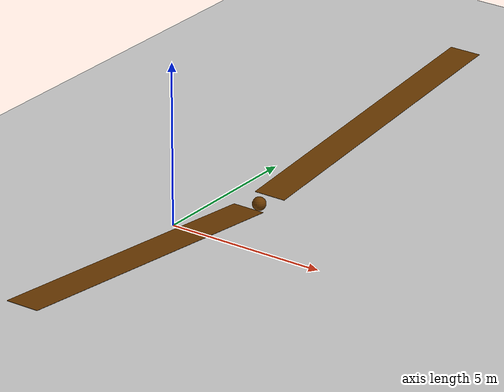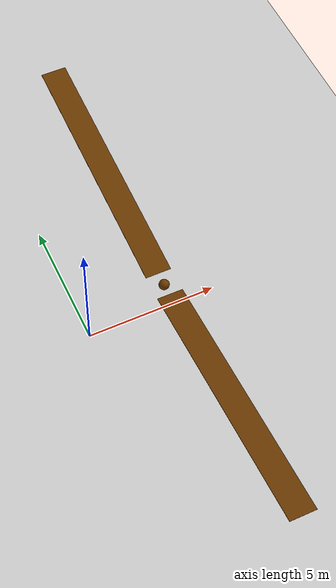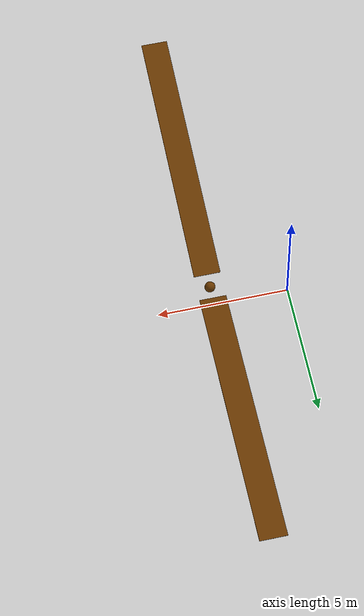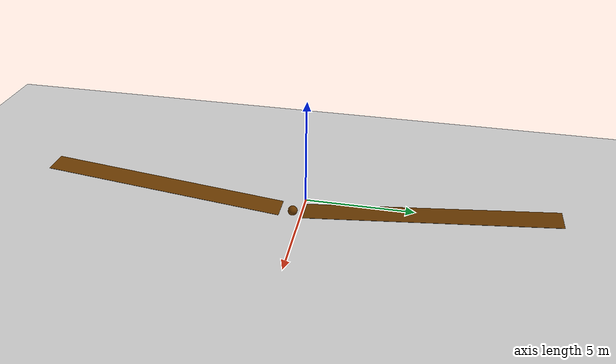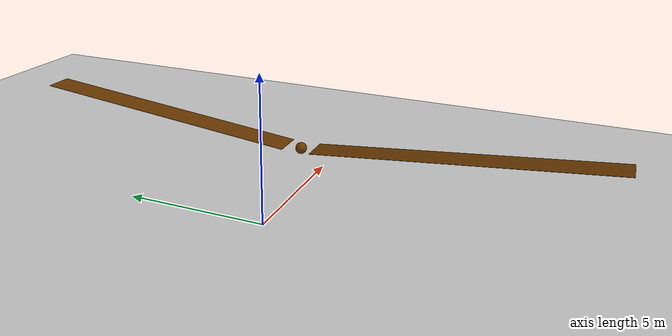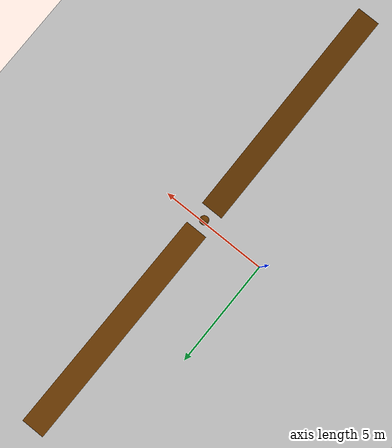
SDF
<?xml version="1.0" ?>
<sdf version="1.4">
  <world name="default">
    <physics type="ode">
      <gravity>0.0 0.0 0.0</gravity>
      <ode>
        <solver>
          <type>quick</type>
          <iters>1500</iters>
          <sor>1.0</sor>
        </solver>
        <constraints>
          <cfm>0.0</cfm>
          <erp>0.2</erp>
          <contact_max_correcting_vel>0.1</contact_max_correcting_vel>
          <contact_surface_layer>0.0</contact_surface_layer>
        </constraints>
      </ode>
      <real_time_update_rate>0</real_time_update_rate>
      <max_step_size>0.001</max_step_size>
    </physics>
    <include>
      <uri>model://sun</uri>
    </include>

    <model name="ground_plane">
      <static>true</static>
      <link name="link">
        <collision name="collision">
          <geometry>
            <plane>
              <normal>0 0 1</normal>
              <size>1000 1000</size>
            </plane>
          </geometry>
          <surface>
            <friction>
              <ode>
                <mu>1</mu>
                <mu2>1</mu2>
              </ode>
            </friction>
          </surface>
        </collision>
        <visual name="visual">
          <cast_shadows>false</cast_shadows>
          <geometry>
            <plane>
              <normal>0 0 1</normal>
              <size>1000 1000</size>
            </plane>
          </geometry>
          <material>
            <script>
              <uri>file://media/materials/scripts/gazebo.material</uri>
              <name>Gazebo/Grey</name>
            </script>
          </material>
        </visual>
      </link>
    </model>

    <model name="lift_drag_demo_model">
      <pose>0 0 0 0 0 0</pose>
      <static>false</static>

      <link name="body">
        <pose>3.0 0 1.5 0 0 0</pose>
        <inertial>
          <pose>0.0 0 0 0.0 0.0 0.0</pose>
          <inertia>
            <ixx>0.465</ixx>
            <ixy>0.0</ixy>
            <ixz>0.0</ixz>
            <iyy>0.006</iyy>
            <iyz>0.0</iyz>
            <izz>0.470</izz>
          </inertia>
          <mass>1.0</mass>
        </inertial>
        <collision name="collision">
          <pose>0.0 0 0 0.0 0.0 0.0</pose>
          <geometry>
            <sphere>
              <radius>0.2</radius>
            </sphere>
          </geometry>
        </collision>
        <visual name="visual">
          <pose>0.0 0 0 0.0 0.0 0.0</pose>
          <geometry>
            <sphere>
              <radius>0.2</radius>
            </sphere>
          </geometry>
          <material>
            <ambient>0.5 0.2 0.2 1.0</ambient>
            <diffuse>.421 0.225 0.0 1.0</diffuse>
          </material>
        </visual>
      </link>

      <link name="wing_1">
        <pose>3 0 1.5 0.1 0 0</pose>
        <inertial>
          <pose>0.0 5.5 0 0.0 0.0 0.0</pose>
          <inertia>
            <ixx>0.465</ixx>
            <ixy>0.0</ixy>
            <ixz>0.0</ixz>
            <iyy>0.006</iyy>
            <iyz>0.0</iyz>
            <izz>0.470</izz>
          </inertia>
          <mass>1.0</mass>
        </inertial>
        <collision name="collision">
          <pose>0.0 5.5 0 0.0 0.0 0.0</pose>
          <geometry>
            <box>
              <size>1.0 10.0 0.01</size>
            </box>
          </geometry>
        </collision>
        <visual name="visual">
          <pose>0.0 5.5 0 0.0 0.0 0.0</pose>
          <geometry>
            <box>
              <size>1.0 10.0 0.01</size>
            </box>
          </geometry>
          <material>
            <ambient>0.5 0.2 0.2 1.0</ambient>
            <diffuse>.421 0.225 0.0 1.0</diffuse>
          </material>
        </visual>
      </link>
      <link name="wing_2">
        <pose>3 0 1.5 -0.1 0 0</pose>
        <inertial>
          <pose>0.0 -5.5 0 0.0 0.0 0.0</pose>
          <inertia>
            <ixx>0.465</ixx>
            <ixy>0.0</ixy>
            <ixz>0.0</ixz>
            <iyy>0.006</iyy>
            <iyz>0.0</iyz>
            <izz>0.470</izz>
          </inertia>
          <mass>1.0</mass>
        </inertial>
        <collision name="collision">
          <pose>0.0 -5.5 0 0.0 0.0 0.0</pose>
          <geometry>
            <box>
              <size>1.0 10.0 0.01</size>
            </box>
          </geometry>
        </collision>
        <visual name="visual">
          <pose>0.0 -5.5 0 0.0 0.0 0</pose>
          <geometry>
            <box>
              <size>1.0 10.0 0.01</size>
            </box>
          </geometry>
          <material>
            <ambient>0.2 0.5 0.2 1.0</ambient>
            <diffuse>.421 0.225 0.0 1.0</diffuse>
          </material>
        </visual>
      </link>

      <joint name="body_joint" type="prismatic">
        <parent>world</parent>
        <child>body</child>
        <pose>0.0 0.0 0.0 0.0 0.0 0.0</pose>
        <axis>
          <xyz>1.0 0.0 0.0</xyz>
          <dynamics>
            <damping>0.000000</damping>
          </dynamics>
        </axis>
        <physics>
          <provide_feedback>true</provide_feedback>
          <ode>
            <cfm_damping>1</cfm_damping>
          </ode>
        </physics>
      </joint>

      <joint name="wing_1_joint" type="revolute">
        <parent>body</parent>
        <child>wing_1</child>
        <pose>0.0 0.0 0.0 0.0 0.0 0.0</pose>
        <axis>
          <xyz>0 0.0 1</xyz>
          <limit>
            <upper>0</upper>
            <lower>0</lower>
          </limit>
          <dynamics>
            <damping>0.000000</damping>
          </dynamics>
        </axis>
        <physics>
          <provide_feedback>true</provide_feedback>
          <ode>
            <cfm_damping>1</cfm_damping>
          </ode>
        </physics>
      </joint>
      <joint name="wing_2_joint" type="revolute">
        <parent>body</parent>
        <child>wing_2</child>
        <pose>0.0 0.0 0.0 0.0 0.0 0.0</pose>
        <axis>
          <xyz>0 0.0 1</xyz>
          <limit>
            <upper>0</upper>
            <lower>0</lower>
          </limit>
          <dynamics>
            <damping>0.000000</damping>
          </dynamics>
        </axis>
        <physics>
          <provide_feedback>true</provide_feedback>
          <ode>
            <cfm_damping>1</cfm_damping>
          </ode>
        </physics>
      </joint>

      <plugin name="gazebo_wing_1" filename="libLiftDragPlugin.so">
        <a0>0.1</a0>
        <cla>4.000</cla>
        <cda>20.0</cda>
        <cma>0.00</cma>
        <alpha_stall>10.0</alpha_stall>
        <cla_stall>-0.2</cla_stall>
        <cda_stall>1.0</cda_stall>
        <cma_stall>0.0</cma_stall>
        <cp>0.0 5.0 0</cp>
        <area>10</area>
        <air_density>1.2041</air_density>
        <forward>-1 0 0</forward>
        <upward>0 0 1</upward>
        <link_name>lift_drag_demo_model::wing_1</link_name>
      </plugin>
      <plugin name="gazebo_wing_2" filename="libLiftDragPlugin.so">
        <a0>0.1</a0>
        <cla>4.000</cla>
        <cda>20.0</cda>
        <cma>0.00</cma>
        <alpha_stall>10.0</alpha_stall>
        <cla_stall>-0.2</cla_stall>
        <cda_stall>1.0</cda_stall>
        <cma_stall>0.0</cma_stall>
        <cp>0.0 -5.0 0</cp>
        <area>10</area>
        <air_density>1.2041</air_density>
        <forward>-1 0 0</forward>
        <upward>0 0 1</upward>
        <link_name>lift_drag_demo_model::wing_2</link_name>
      </plugin>

    </model>
  </world>
</sdf>
